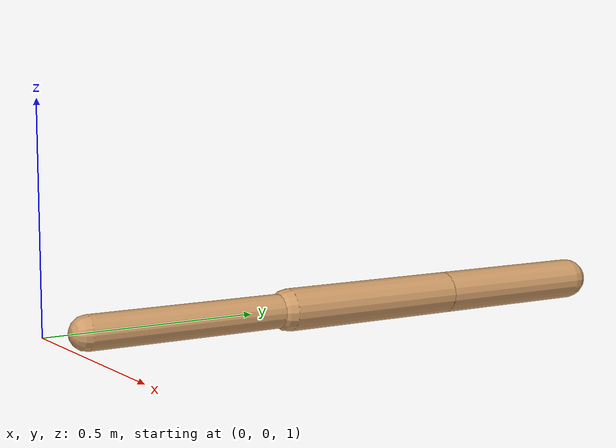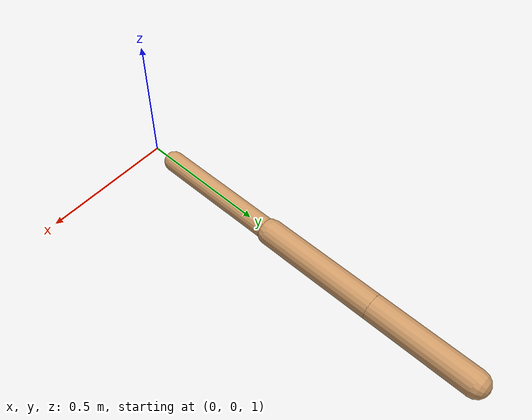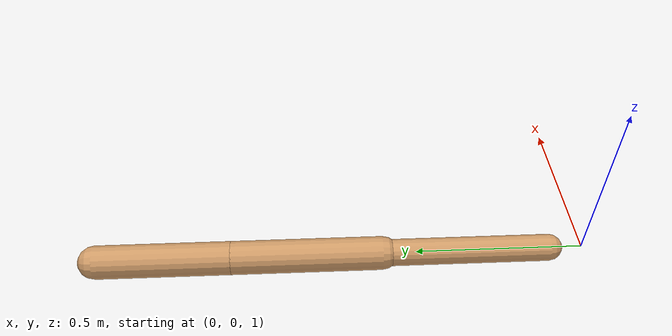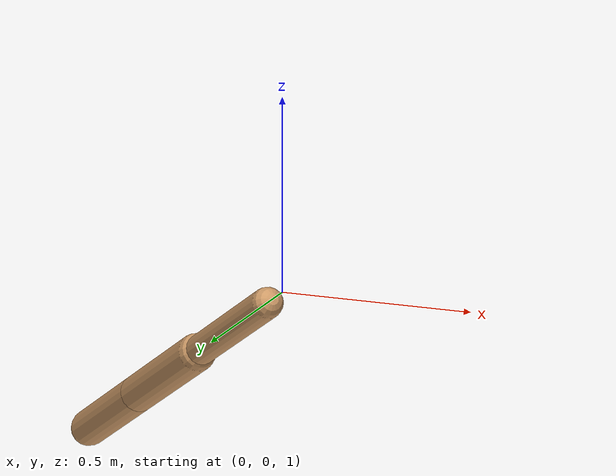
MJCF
<mujoco model="hopper">
  <compiler angle="degree" coordinate="global" inertiafromgeom="true"/>
  <default>
    <joint armature="1" damping="1" limited="true"/>
    <geom conaffinity="1" condim="1" contype="1" margin="0.001" material="geom" rgba="0.8 0.6 .4 1" solimp=".8 .8 .01" solref=".02 1"/>
    <motor ctrllimited="true" ctrlrange="-.4 .4"/>
  </default>
  <option integrator="RK4" timestep="0.002"/>
  <worldbody>
    <body name="torso" pos="0 1.25 0">
      <geom friction="0.9" fromto="0 1.45 01 0 1.05 01" name="torso_geom" size="0.05" type="capsule"/>
      <body name="thigh" pos="0 1.05 01">
        <joint axis="-1 0 0" name="thigh_joint" pos="0 1.05 01" range="-150 0" type="hinge"/>
        <geom friction="0.9" fromto="0 1.05 01 0 0.6 01" name="thigh_geom" size="0.05" type="capsule"/>
        <body name="leg" pos="0 0 0.35">
          <joint axis="-1 0 0" name="leg_joint" pos="0 0.6 01" range="-150 0" type="hinge"/>
          <geom friction="0.9" fromto="0 0.6 01 0 0.1 01" name="leg_geom" size="0.04" type="capsule"/>
        </body>
      </body>
    </body>
  </worldbody>
  <actuator>
    <motor ctrllimited="true" ctrlrange="-1.0 1.0" gear="200.0" joint="thigh_joint"/>
    <motor ctrllimited="true" ctrlrange="-1.0 1.0" gear="200.0" joint="leg_joint"/>
  </actuator>
    <asset>
        <texture type="skybox" builtin="gradient" rgb1=".4 .5 .6" rgb2="0 0 0"
            width="100" height="100"/>
        <texture builtin="flat" height="1278" mark="cross" markrgb="1 1 1" name="texgeom" random="0.01" rgb1="0.8 0.6 0.4" rgb2="0.8 0.6 0.4" type="cube" width="127"/>
        <texture builtin="checker" height="100" name="texplane" rgb1="0 0 0" rgb2="0.8 0.8 0.8" type="2d" width="100"/>
        <material name="MatPlane" reflectance="0.5" shininess="1" specular="1" texrepeat="60 60" texture="texplane"/>
        <material name="geom" texture="texgeom" texuniform="true"/>
    </asset>
</mujoco>
